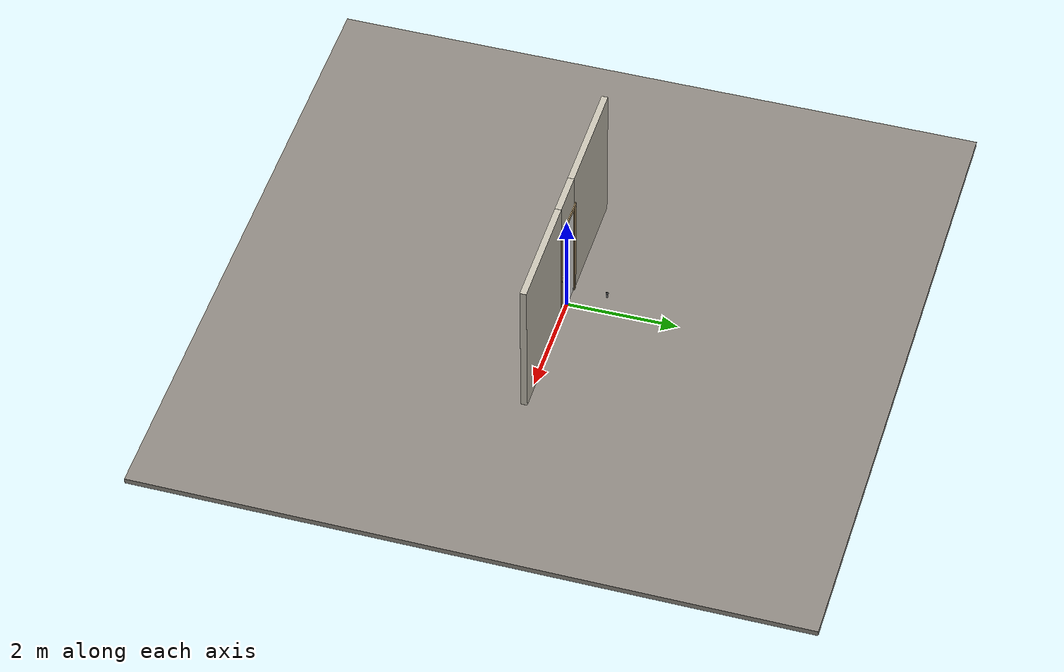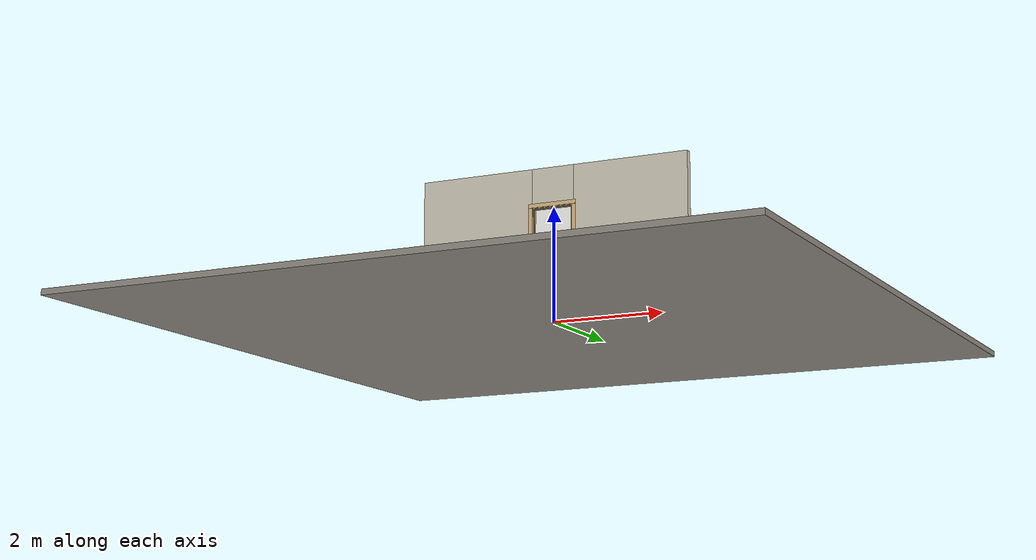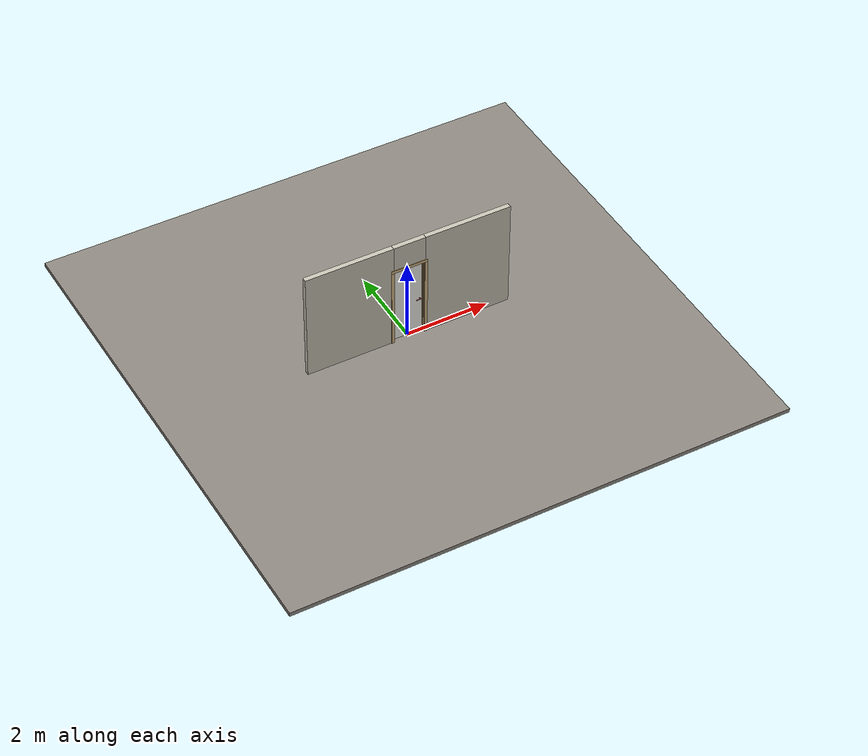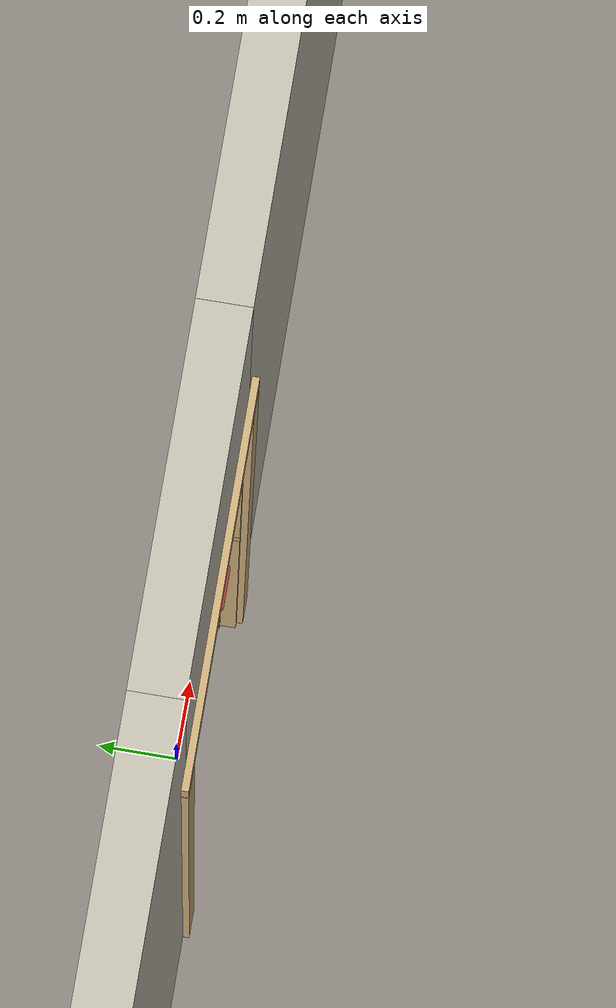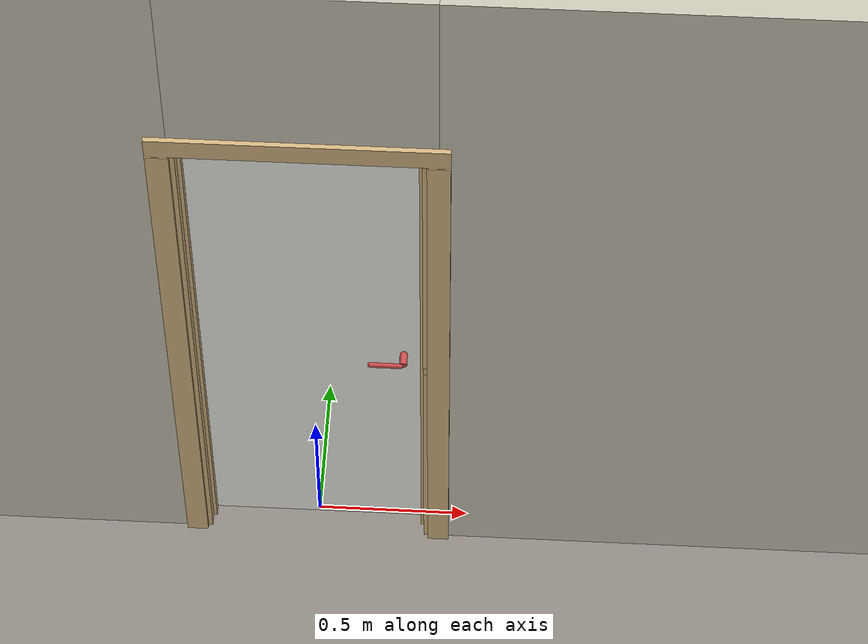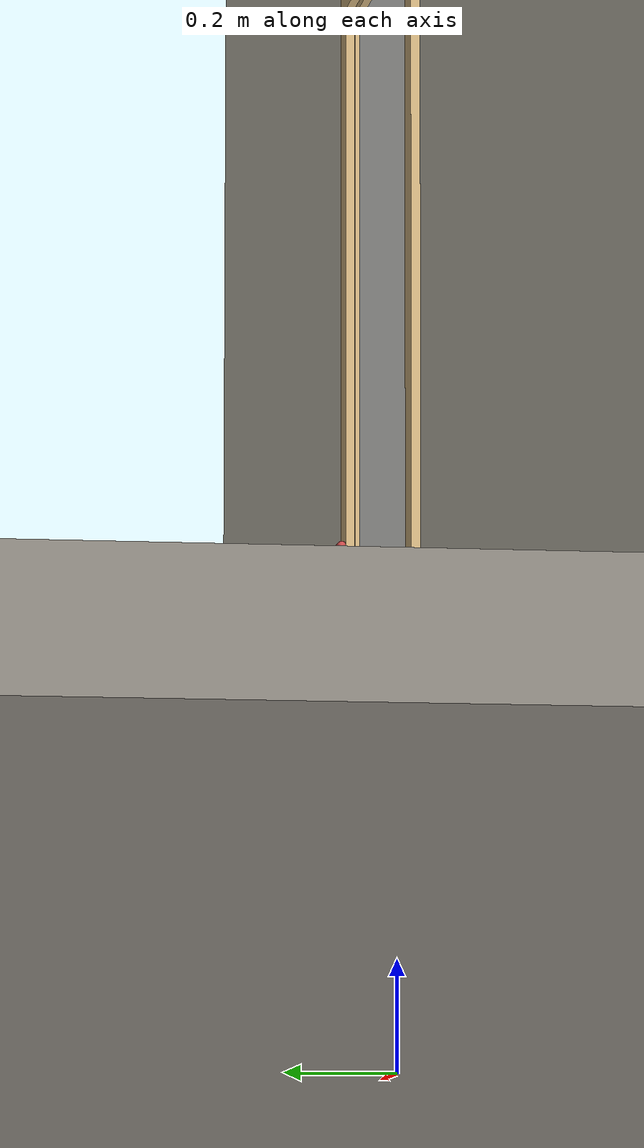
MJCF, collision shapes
<?xml version="1.0" ?>
<mujoco model="db0907_swing_single_full">
  <compiler angle="radian" meshdir="../../hardware" texturedir="../../textures" autolimits="true" inertiafromgeom="false"/>
  <option timestep="0.002" integrator="implicitfast" cone="elliptic" impratio="10" noslip_iterations="3">
    <flag multiccd="enable"/>
  </option>
  <size memory="16M"/>
  <default>
    <geom condim="4" solref="0.005 1" solimp="0.95 0.99 0.001"/>
    <joint solreflimit="0.005 1" solimplimit="0.95 0.99 0.001"/>
    <tendon solreflimit="0.005 1"/>
    <equality solref="0.002 1"/>
  </default>
  <visual>
    <headlight ambient="0.4 0.4 0.4" diffuse="0.7 0.7 0.7" specular="0.2 0.2 0.2"/>
    <quality shadowsize="4096"/>
    <map znear="0.01" zfar="60"/>
  </visual>
  <asset>
    <mesh name="hinge_c20a5829de" file="hinge_c20a5829de.obj"/>
    <mesh name="hinge_jamb_20499e6581" file="hinge_jamb_20499e6581.obj"/>
    <mesh name="lever_748f08efca" file="lever_748f08efca.obj"/>
    <material name="mat_floor" rgba="0.55 0.53 0.5 1" specular="0.2" shininess="0.15" reflectance="0"/>
    <material name="mat_wall" rgba="0.78 0.76 0.7 1" specular="0.2" shininess="0.1" reflectance="0"/>
    <material name="mat_hinge" rgba="0.55 0.56 0.58 1" specular="0.8" shininess="0.55" reflectance="0.4"/>
    <material name="mat_leaf" rgba="0.93 0.93 0.91 1" specular="0.2" shininess="0.33" reflectance="0"/>
    <material name="mat_op_chrome" rgba="0.9 0.9 0.92 1" specular="0.8" shininess="0.9" reflectance="0.4"/>
    <material name="mat_trim" rgba="0.85 0.66 0.3 1" specular="0.8" shininess="0.75" reflectance="0.4"/>
    <material name="mat_bolt" rgba="0.85 0.66 0.3 1" specular="0.8" shininess="0.75" reflectance="0.4"/>
    <material name="mat_frame" rgba="0.82 0.7 0.5 1" specular="0.2" shininess="0.45" reflectance="0"/>
    <material name="mat_bumper_stop" rgba="0.08 0.08 0.08 1" specular="0.2" shininess="0.1" reflectance="0"/>
    <material name="mat_stop_base" rgba="0.9 0.9 0.92 1" specular="0.8" shininess="0.9" reflectance="0.4"/>
    <texture name="skybox" type="skybox" builtin="gradient" rgb1="0.6 0.7 0.85" rgb2="0.9 0.92 0.95" width="256" height="256"/>
  </asset>
  <worldbody>
    <light name="sun" pos="1.5 -2.5 4" dir="-0.3 0.5 -0.8" directional="true" diffuse="0.8 0.8 0.8" specular="0.3 0.3 0.3" castshadow="true"/>
    <light name="fill" pos="-1.5 2.5 3" dir="0.3 -0.5 -0.7" directional="true" diffuse="0.35 0.35 0.4" castshadow="false"/>
    <camera name="robot_view" pos="0 -2.531125 1.698475" xyaxes="1 0 0 0 0.26963 0.962964" fovy="52"/>
    <camera name="far_view" pos="0 2.465125 1.698475" xyaxes="-1 0 0 0 -0.26963 0.962964" fovy="52"/>
    <camera name="iso" pos="1.898575 -2.131425 2.098175" xyaxes="0.741536 0.670913 0 -0.242917 0.268487 0.932151" fovy="46"/>
    <camera name="detail_handle" pos="0.3854 -0.8725 1.245" xyaxes="0.97561 0.219512 0 -0.070934 0.315262 0.94635" fovy="38"/>
    <geom name="floor" type="box" size="6 6 0.05" pos="0 0 -0.05" material="mat_floor" group="0" contype="1" conaffinity="1" friction="0.8 0.005 0.0001" density="2400"/>
    <geom name="wall_left" type="box" size="1.061 0.0575 1.35" pos="-1.439 -0.033 1.35" material="mat_wall" group="0" contype="1" conaffinity="1" friction="0.6 0.005 0.0001" density="800"/>
    <geom name="wall_right" type="box" size="1.046 0.0575 1.35" pos="1.454 -0.033 1.35" material="mat_wall" group="0" contype="1" conaffinity="1" friction="0.6 0.005 0.0001" density="800"/>
    <geom name="wall_header" type="box" size="0.393 0.0575 0.3265" pos="0.015 -0.033 2.3735" material="mat_wall" group="0" contype="1" conaffinity="1" friction="0.6 0.005 0.0001" density="800"/>
    <geom name="hinge_0_jamb" type="mesh" mesh="hinge_jamb_20499e6581" pos="-0.356 0.0245 0.259" quat="0 1 0 0" material="mat_hinge" group="1" contype="0" conaffinity="0" density="7850"/>
    <geom name="hinge_1_jamb" type="mesh" mesh="hinge_jamb_20499e6581" pos="-0.356 0.0245 0.9963" quat="0 1 0 0" material="mat_hinge" group="1" contype="0" conaffinity="0" density="7850"/>
    <geom name="hinge_2_jamb" type="mesh" mesh="hinge_jamb_20499e6581" pos="-0.356 0.0245 1.8036" quat="0 1 0 0" material="mat_hinge" group="1" contype="0" conaffinity="0" density="7850"/>
    <geom name="jamb_hinge" type="box" size="0.0095 0.0575 0.999" pos="-0.3685 -0.033 0.999" material="mat_frame" group="0" contype="1" conaffinity="1" friction="0.6 0.005 0.0001" density="400"/>
    <geom name="strike_965_wall_n" type="box" size="0.0245 0.041325 0.0167" pos="0.3835 -0.049175 0.965" material="mat_frame" group="0" contype="1" conaffinity="1" friction="0.6 0.005 0.0001" density="400"/>
    <geom name="strike_965_wall_p" type="box" size="0.0245 0.008 0.0167" pos="0.3835 0.01585 0.965" material="mat_frame" group="0" contype="1" conaffinity="1" friction="0.6 0.005 0.0001" density="400"/>
    <geom name="strike_965_ramp" type="box" size="0.0245 0.01649 0.0167" pos="0.388136 0.028673 0.965" quat="0.977148 0 0 -0.212558" material="mat_frame" group="0" contype="1" conaffinity="1" friction="0.12 0.005 0.0001" density="400"/>
    <geom name="strike_965_back" type="box" size="0.01615 0.00785 0.0167" pos="0.39185 0 0.965" material="mat_frame" group="0" contype="1" conaffinity="1" friction="0.6 0.005 0.0001" density="400"/>
    <geom name="jamb_strike_0" type="box" size="0.0245 0.0575 0.47415" pos="0.3835 -0.033 0.47415" material="mat_frame" group="0" contype="1" conaffinity="1" friction="0.6 0.005 0.0001" density="400"/>
    <geom name="jamb_strike_1" type="box" size="0.0245 0.0575 0.50815" pos="0.3835 -0.033 1.48985" material="mat_frame" group="0" contype="1" conaffinity="1" friction="0.6 0.005 0.0001" density="400"/>
    <geom name="jamb_head" type="box" size="0.393 0.0575 0.0095" pos="0.015 -0.033 2.0075" material="mat_frame" group="0" contype="1" conaffinity="1" friction="0.6 0.005 0.0001" density="400"/>
    <geom name="head_stud" type="box" size="0.393 0.0575 0.015" pos="0.015 -0.033 2.032" material="mat_wall" group="0" contype="1" conaffinity="1" friction="0.6 0.005 0.0001" density="500"/>
    <geom name="stop_hinge" type="box" size="0.0055 0.016 0.999" pos="-0.3535 -0.034 0.999" material="mat_frame" group="0" contype="1" conaffinity="1" friction="0.6 0.005 0.0001" density="400"/>
    <geom name="stop_strike" type="box" size="0.0055 0.016 0.999" pos="0.3535 -0.034 0.999" material="mat_frame" group="0" contype="1" conaffinity="1" friction="0.6 0.005 0.0001" density="400"/>
    <geom name="stop_head" type="box" size="0.359 0.016 0.0055" pos="0 -0.034 1.9925" material="mat_frame" group="0" contype="1" conaffinity="1" friction="0.6 0.005 0.0001" density="400"/>
    <geom name="casing_l_n" type="box" size="0.035 0.008 1.0085" pos="-0.408 -0.0985 0.999" material="mat_frame" group="2" contype="0" conaffinity="0" density="400"/>
    <geom name="casing_r_n" type="box" size="0.035 0.008 1.0085" pos="0.408 -0.0985 0.999" material="mat_frame" group="2" contype="0" conaffinity="0" density="400"/>
    <geom name="casing_h_n" type="box" size="0.443 0.008 0.035" pos="0 -0.0985 2.047" material="mat_frame" group="2" contype="0" conaffinity="0" density="400"/>
    <geom name="casing_l_p" type="box" size="0.035 0.008 1.0085" pos="-0.408 0.0325 0.999" material="mat_frame" group="2" contype="0" conaffinity="0" density="400"/>
    <geom name="casing_r_p" type="box" size="0.035 0.008 1.0085" pos="0.408 0.0325 0.999" material="mat_frame" group="2" contype="0" conaffinity="0" density="400"/>
    <geom name="casing_h_p" type="box" size="0.443 0.008 0.035" pos="0 0.0325 2.047" material="mat_frame" group="2" contype="0" conaffinity="0" density="400"/>
    <geom name="door_stop_base" type="cylinder" size="0.022 0.003" pos="-0.372 0.62885 0.003" material="mat_stop_base" group="0" contype="1" conaffinity="1" friction="0.6 0.005 0.0001" density="7850"/>
    <geom name="door_stop_post" type="cylinder" size="0.012 0.0245" pos="-0.372 0.62885 0.0305" material="mat_stop_base" group="0" contype="1" conaffinity="1" friction="0.6 0.005 0.0001" density="7850"/>
    <geom name="door_stop_bumper" type="cylinder" size="0.022 0.02" pos="-0.372 0.62885 0.075" material="mat_bumper_stop" group="0" contype="1" conaffinity="1" friction="0.6 0.005 0.0001" density="1100"/>
    <site name="approach_point" pos="0 -1.5 0" quat="1 0 0 0" size="0.05" rgba="0.2 0.9 0.2 0.5" group="4"/>
    <site name="goal_point" pos="0 1.5 0" quat="1 0 0 0" size="0.05" rgba="0.2 0.9 0.2 0.5" group="4"/>
    <site name="door_plane_center" pos="0 0 0.999" quat="1 0 0 0" size="0.02" rgba="0.2 0.9 0.2 0.5" group="4"/>
    <body name="leaf_riser" pos="-0.359 0 0">
      <inertial pos="0.003 0.0245 0.055" mass="0.174012" quat="0.707107 0 0.707107 0" diaginertia="0.000017053 0.00002732 0.00002732"/>
      <joint name="leaf_rise" type="slide" axis="0 0 1" limited="true" range="0 0.0176" damping="1" armature="0.5"/>
      <geom name="leaf_riser_marker" type="cylinder" size="0.014 0.018" pos="0.003 0.0245 0.055" material="mat_hinge" group="1" contype="0" conaffinity="0" density="7850"/>
      <body name="leaf" pos="0 0 0">
        <inertial pos="0.352344 0.000294 0.9967" mass="33.07426" quat="0.500463 0.499272 -0.500717 0.499546" diaginertia="1.446275998 10.789223324 12.228388735"/>
        <joint name="leaf_hinge" type="hinge" axis="0 0 1" pos="0.003 0.0245 0" limited="true" range="0 1.570796" damping="0.141613" frictionloss="0.488154" armature="0.02"/>
        <geom name="leaf_slab" type="box" size="0.3555 0.0175 0.9873" pos="0.3585 0 0.9963" material="mat_leaf" group="0" contype="1" conaffinity="1" friction="0.4 0.005 0.0001" density="1"/>
        <geom name="hinge_0" type="mesh" mesh="hinge_c20a5829de" pos="0.003 0.0245 0.259" quat="0 1 0 0" material="mat_hinge" group="1" contype="0" conaffinity="0" density="7850"/>
        <geom name="hinge_1" type="mesh" mesh="hinge_c20a5829de" pos="0.003 0.0245 0.9963" quat="0 1 0 0" material="mat_hinge" group="1" contype="0" conaffinity="0" density="7850"/>
        <geom name="hinge_2" type="mesh" mesh="hinge_c20a5829de" pos="0.003 0.0245 1.8036" quat="0 1 0 0" material="mat_hinge" group="1" contype="0" conaffinity="0" density="7850"/>
        <geom name="leaf_latch_bolt_faceplate" type="box" size="0.0006 0.01235 0.0267" pos="0.7134 0 0.965" material="mat_bolt" group="1" contype="0" conaffinity="0" density="8500"/>
        <site name="leaf_edge_mid" pos="0.714 0 0.9873" quat="1 0 0 0" size="0.02" rgba="0.2 0.9 0.2 0.5" group="4"/>
        <body name="leaf_handle" pos="0.654 0 0.965">
          <inertial pos="-0.024417 0 0" mass="0.839807" quat="0.707107 0 0 -0.707107" diaginertia="0.001182467 0.002815434 0.003861215"/>
          <joint name="leaf_handle_hinge" type="hinge" axis="0 -1 0" limited="true" range="0 0.87" damping="0.205084" frictionloss="0.04" stiffness="0.9" springref="-0.444444" armature="0.01"/>
          <geom name="leaf_handle_spindle" type="cylinder" size="0.006 0.0255" pos="0 0 0" quat="0.707107 -0.707107 0 0" material="mat_op_chrome" group="1" contype="0" conaffinity="0" density="7850"/>
          <geom name="leaf_handle_lever_n" type="mesh" mesh="lever_748f08efca" pos="0 -0.0175 0" quat="0.707107 0.707107 0 0" material="mat_op_chrome" group="1" contype="0" conaffinity="0" density="3000"/>
          <geom name="leaf_handle_lever_col_n" type="capsule" size="0.008 0.048" pos="-0.056 -0.0725 0" quat="0.707107 0 -0.707107 0" material="mat_op_chrome" group="3" contype="1" conaffinity="1" rgba="0.8 0.3 0.3 0.25" friction="0.7 0.01 0.0001" density="3000"/>
          <geom name="leaf_handle_hub_col_n" type="cylinder" size="0.012 0.022" pos="0 -0.0475 0" quat="0.707107 -0.707107 0 0" material="mat_op_chrome" group="3" contype="1" conaffinity="1" rgba="0.8 0.3 0.3 0.25" friction="0.6 0.005 0.0001" density="3000"/>
          <geom name="leaf_handle_lever_p" type="mesh" mesh="lever_748f08efca" pos="0 0.0175 0" quat="-0.707107 0.707107 0 0" material="mat_op_chrome" group="1" contype="0" conaffinity="0" density="3000"/>
          <geom name="leaf_handle_lever_col_p" type="capsule" size="0.008 0.048" pos="-0.056 0.0725 0" quat="0.707107 0 -0.707107 0" material="mat_op_chrome" group="3" contype="1" conaffinity="1" rgba="0.8 0.3 0.3 0.25" friction="0.7 0.01 0.0001" density="3000"/>
          <geom name="leaf_handle_hub_col_p" type="cylinder" size="0.012 0.022" pos="0 0.0475 0" quat="0.707107 -0.707107 0 0" material="mat_op_chrome" group="3" contype="1" conaffinity="1" rgba="0.8 0.3 0.3 0.25" friction="0.6 0.005 0.0001" density="3000"/>
          <site name="leaf_handle_grip_n" pos="-0.0896 -0.0725 0" quat="1 0 0 0" size="0.012" rgba="0.2 0.9 0.2 0.5" group="4"/>
          <site name="leaf_handle_grip_p" pos="-0.0896 0.0725 0" quat="1 0 0 0" size="0.012" rgba="0.2 0.9 0.2 0.5" group="4"/>
        </body>
        <body name="leaf_latch_bolt" pos="0.714 0 0.965">
          <inertial pos="-0.00865 0 0" mass="0.041419" quat="0.92388 -0.382683 0 0" diaginertia="0.000000798 0.000005598 0.000005598"/>
          <joint name="leaf_latch_bolt_slide" type="slide" axis="-1 0 0" limited="true" range="0 0.0127" damping="2" frictionloss="0.3" stiffness="300" springref="-0.008333" armature="0.1"/>
          <geom name="leaf_latch_bolt_capsule" type="capsule" size="0.00635 0.015" pos="-0.00865 0 0" quat="0.707107 0 0.707107 0" material="mat_bolt" group="0" contype="1" conaffinity="1" friction="0.2 0.005 0.0001" density="8500"/>
        </body>
      </body>
    </body>
  </worldbody>
  <tendon>
    <fixed name="leaf_latch_bolt_coupling" limited="true" range="0 10">
      <joint joint="leaf_latch_bolt_slide" coef="1"/>
      <joint joint="leaf_handle_hinge" coef="-0.016076"/>
    </fixed>
  </tendon>
  <equality>
    <joint name="leaf_rise_couple" joint1="leaf_rise" joint2="leaf_hinge" polycoef="0 0.005093 0 0 0" active="true"/>
  </equality>
  <sensor>
    <jointpos name="leaf_hinge_pos" joint="leaf_hinge"/>
    <jointvel name="leaf_hinge_vel" joint="leaf_hinge"/>
    <jointpos name="leaf_handle_hinge_pos" joint="leaf_handle_hinge"/>
    <jointvel name="leaf_handle_hinge_vel" joint="leaf_handle_hinge"/>
    <jointpos name="leaf_latch_bolt_slide_pos" joint="leaf_latch_bolt_slide"/>
    <jointvel name="leaf_latch_bolt_slide_vel" joint="leaf_latch_bolt_slide"/>
  </sensor>
</mujoco>
